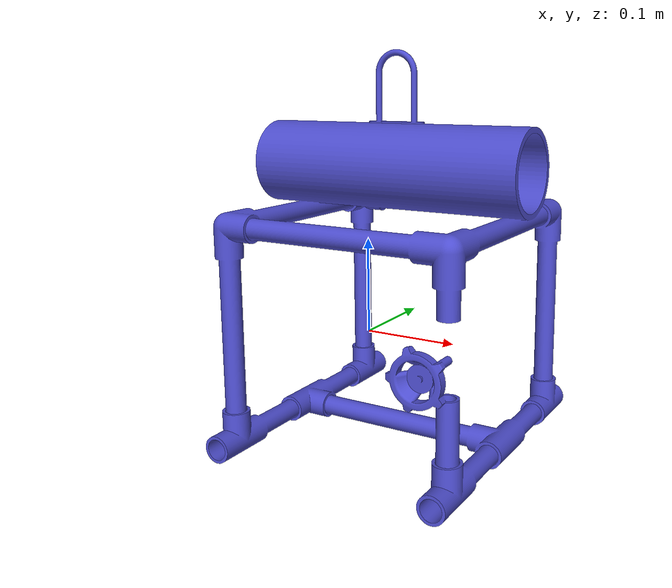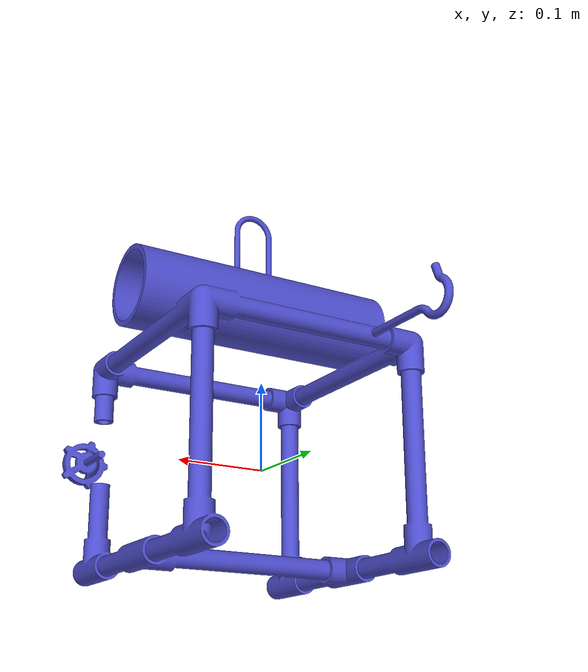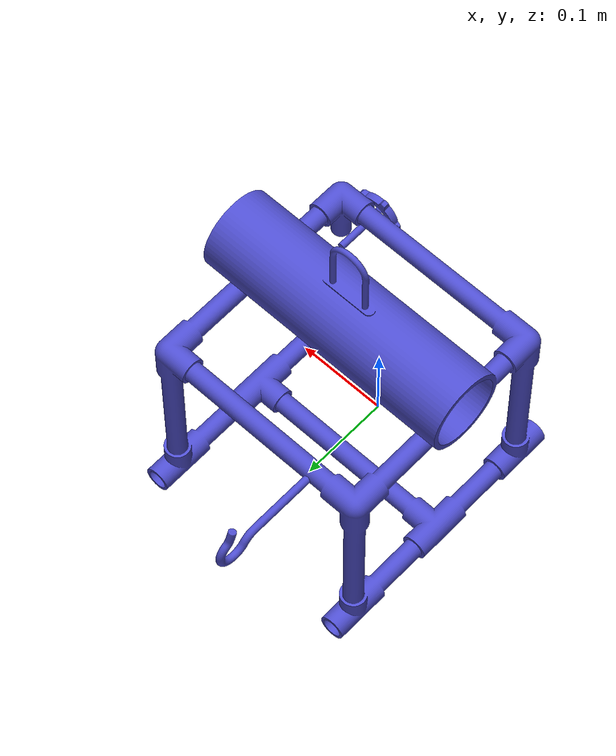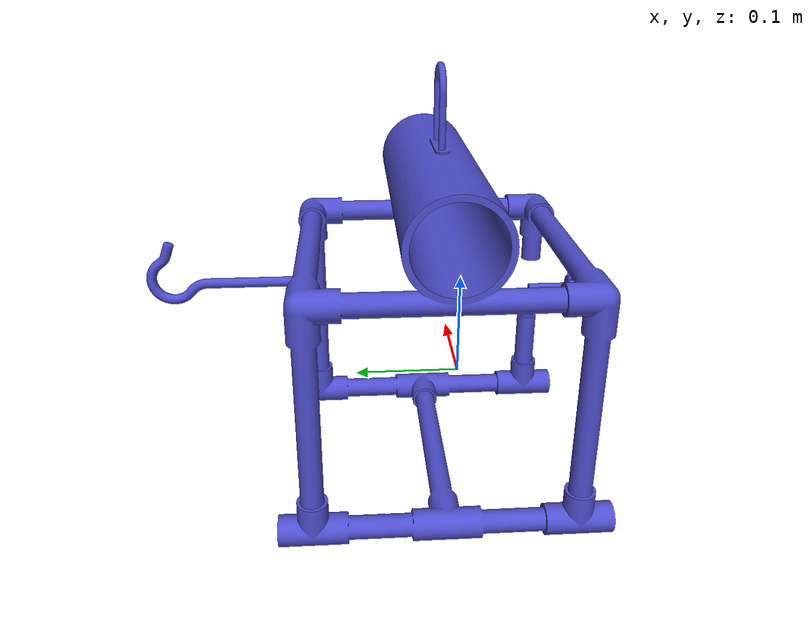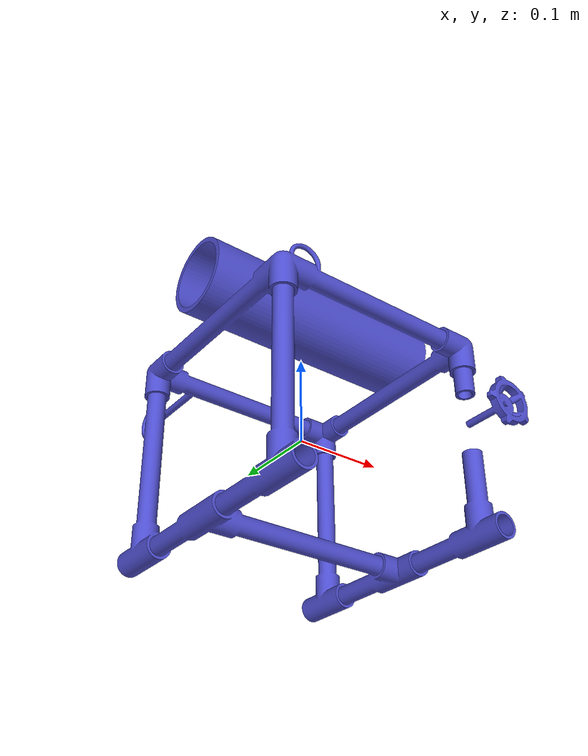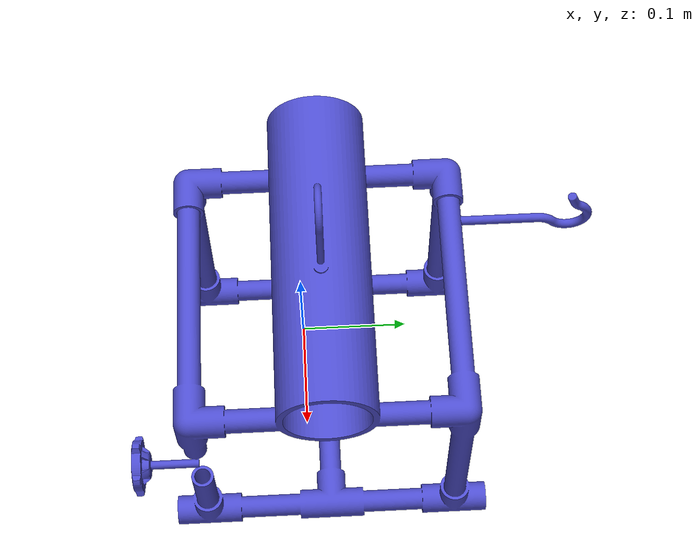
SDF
<?xml version='1.0'?>
<sdf version='1.7'>
  <model name='irrigation_system'>
    <link name='part_1'>
      <inertial>
        <pose>0 0 0 0 -0 0</pose>
        <mass>2</mass>
        <inertia>
          <ixx>0</ixx>
          <ixy>0</ixy>
          <ixz>0</ixz>
          <iyy>0</iyy>
          <iyz>0</iyz>
          <izz>0</izz>
        </inertia>
      </inertial>
      <self_collide>0</self_collide>
      <enable_wind>0</enable_wind>
      <kinematic>0</kinematic>
      <pose>0 0 0 0 -0 0</pose>
      <gravity>1</gravity>
      <is_static>1</is_static>
      <frame name='part_1_frame'>
        <pose>0 0 0 0 -0 0</pose>
      </frame>
      <visual name='assembly_visual'>
        <pose>0.25 0.2 -0.2 0 -0 0</pose>
        <geometry>
          <mesh>
            <uri>/home/eer/Documents/Software_2024/ROS2/models/irrigation_system/irrigation_system_visual.stl</uri>
            <scale>0.001 0.001 0.001</scale>
          </mesh>
        </geometry>
        <material>
          <shader type='pixel'>
            <normal_map>__default__</normal_map>
          </shader>
          <ambient>0.3 0.3 0.3 1</ambient>
          <diffuse>0.3 0.3 0.8 1</diffuse>
          <specular>0.3 0.3 0.3 1</specular>
          <emissive>0 0 0 1</emissive>
          <script>
            <name>Gazebo/Grey</name>
            <uri>__default__</uri>
          </script>
        </material>
        <transparency>0</transparency>
        <cast_shadows>1</cast_shadows>
      </visual>
      <collision name='collision_1'>
        <laser_retro>0</laser_retro>
        <max_contacts>10</max_contacts>
        <pose>0.02 0.02 0.02 0 -0 0</pose>
        <geometry>
          <box>
            <size>0.28 0.279628 0.293039</size>
          </box>
        </geometry>
        <surface>
          <friction>
            <ode>
              <mu>1</mu>
              <mu2>1</mu2>
              <fdir1>0 0 0</fdir1>
              <slip1>0</slip1>
              <slip2>0</slip2>
            </ode>
            <torsional>
              <coefficient>1</coefficient>
              <patch_radius>0</patch_radius>
              <surface_radius>0</surface_radius>
              <use_patch_radius>1</use_patch_radius>
              <ode>
                <slip>0</slip>
              </ode>
            </torsional>
          </friction>
          <bounce>
            <restitution_coefficient>0</restitution_coefficient>
            <threshold>1e+06</threshold>
          </bounce>
          <contact>
            <collide_without_contact>0</collide_without_contact>
            <collide_without_contact_bitmask>1</collide_without_contact_bitmask>
            <collide_bitmask>1</collide_bitmask>
            <ode>
              <soft_cfm>0</soft_cfm>
              <soft_erp>0.2</soft_erp>
              <kp>1e+13</kp>
              <kd>1</kd>
              <max_vel>0.01</max_vel>
              <min_depth>0</min_depth>
            </ode>
            <bullet>
              <split_impulse>1</split_impulse>
              <split_impulse_penetration_threshold>-0.01</split_impulse_penetration_threshold>
              <soft_cfm>0</soft_cfm>
              <soft_erp>0.2</soft_erp>
              <kp>1e+13</kp>
              <kd>1</kd>
            </bullet>
          </contact>
        </surface>
      </collision>
      <collision name='collision_3'>
        <laser_retro>0</laser_retro>
        <max_contacts>10</max_contacts>
        <pose>0.05 0.02 0.22 0 -0 0</pose>
        <geometry>
          <box>
            <size>0.02 0.01 0.13</size>
          </box>
        </geometry>
        <surface>
          <friction>
            <ode>
              <mu>1</mu>
              <mu2>1</mu2>
              <fdir1>0 0 0</fdir1>
              <slip1>0</slip1>
              <slip2>0</slip2>
            </ode>
            <torsional>
              <coefficient>1</coefficient>
              <patch_radius>0</patch_radius>
              <surface_radius>0</surface_radius>
              <use_patch_radius>1</use_patch_radius>
              <ode>
                <slip>0</slip>
              </ode>
            </torsional>
          </friction>
          <bounce>
            <restitution_coefficient>0</restitution_coefficient>
            <threshold>1e+06</threshold>
          </bounce>
          <contact>
            <collide_without_contact>0</collide_without_contact>
            <collide_without_contact_bitmask>1</collide_without_contact_bitmask>
            <collide_bitmask>1</collide_bitmask>
            <ode>
              <soft_cfm>0</soft_cfm>
              <soft_erp>0.2</soft_erp>
              <kp>1e+13</kp>
              <kd>1</kd>
              <max_vel>0.01</max_vel>
              <min_depth>0</min_depth>
            </ode>
            <bullet>
              <split_impulse>1</split_impulse>
              <split_impulse_penetration_threshold>-0.01</split_impulse_penetration_threshold>
              <soft_cfm>0</soft_cfm>
              <soft_erp>0.2</soft_erp>
              <kp>1e+13</kp>
              <kd>1</kd>
            </bullet>
          </contact>
        </surface>
      </collision>
      <collision name='collision_6'>
        <laser_retro>0</laser_retro>
        <max_contacts>10</max_contacts>
        <pose>-0.045 0.27 0.15 3.14159 1.57079 -1.57079</pose>
        <geometry>
          <box>
            <size>0.05 0.01 0.01</size>
          </box>
        </geometry>
        <surface>
          <friction>
            <ode>
              <mu>1</mu>
              <mu2>1</mu2>
              <fdir1>0 0 0</fdir1>
              <slip1>0</slip1>
              <slip2>0</slip2>
            </ode>
            <torsional>
              <coefficient>1</coefficient>
              <patch_radius>0</patch_radius>
              <surface_radius>0</surface_radius>
              <use_patch_radius>1</use_patch_radius>
              <ode>
                <slip>0</slip>
              </ode>
            </torsional>
          </friction>
          <bounce>
            <restitution_coefficient>0</restitution_coefficient>
            <threshold>1e+06</threshold>
          </bounce>
          <contact>
            <collide_without_contact>0</collide_without_contact>
            <collide_without_contact_bitmask>1</collide_without_contact_bitmask>
            <collide_bitmask>1</collide_bitmask>
            <ode>
              <soft_cfm>0</soft_cfm>
              <soft_erp>0.2</soft_erp>
              <kp>1e+13</kp>
              <kd>1</kd>
              <max_vel>0.01</max_vel>
              <min_depth>0</min_depth>
            </ode>
            <bullet>
              <split_impulse>1</split_impulse>
              <split_impulse_penetration_threshold>-0.01</split_impulse_penetration_threshold>
              <soft_cfm>0</soft_cfm>
              <soft_erp>0.2</soft_erp>
              <kp>1e+13</kp>
              <kd>1</kd>
            </bullet>
          </contact>
        </surface>
      </collision>
      <collision name='collision_2'>
        <laser_retro>0</laser_retro>
        <max_contacts>10</max_contacts>
        <pose>0.02 0.02 0.29 0 -0 0</pose>
        <geometry>
          <box>
            <size>0.08 0.01 0.01</size>
          </box>
        </geometry>
        <surface>
          <friction>
            <ode>
              <mu>1</mu>
              <mu2>1</mu2>
              <fdir1>0 0 0</fdir1>
              <slip1>0</slip1>
              <slip2>0</slip2>
            </ode>
            <torsional>
              <coefficient>1</coefficient>
              <patch_radius>0</patch_radius>
              <surface_radius>0</surface_radius>
              <use_patch_radius>1</use_patch_radius>
              <ode>
                <slip>0</slip>
              </ode>
            </torsional>
          </friction>
          <bounce>
            <restitution_coefficient>0</restitution_coefficient>
            <threshold>1e+06</threshold>
          </bounce>
          <contact>
            <collide_without_contact>0</collide_without_contact>
            <collide_without_contact_bitmask>1</collide_without_contact_bitmask>
            <collide_bitmask>1</collide_bitmask>
            <ode>
              <soft_cfm>0</soft_cfm>
              <soft_erp>0.2</soft_erp>
              <kp>1e+13</kp>
              <kd>1</kd>
              <max_vel>0.01</max_vel>
              <min_depth>0</min_depth>
            </ode>
            <bullet>
              <split_impulse>1</split_impulse>
              <split_impulse_penetration_threshold>-0.01</split_impulse_penetration_threshold>
              <soft_cfm>0</soft_cfm>
              <soft_erp>0.2</soft_erp>
              <kp>1e+13</kp>
              <kd>1</kd>
            </bullet>
          </contact>
        </surface>
      </collision>
      <collision name='collision_4'>
        <laser_retro>0</laser_retro>
        <max_contacts>10</max_contacts>
        <pose>-0.01 0.02 0.22 0 -0 0</pose>
        <geometry>
          <box>
            <size>0.02 0.01 0.13</size>
          </box>
        </geometry>
        <surface>
          <friction>
            <ode>
              <mu>1</mu>
              <mu2>1</mu2>
              <fdir1>0 0 0</fdir1>
              <slip1>0</slip1>
              <slip2>0</slip2>
            </ode>
            <torsional>
              <coefficient>1</coefficient>
              <patch_radius>0</patch_radius>
              <surface_radius>0</surface_radius>
              <use_patch_radius>1</use_patch_radius>
              <ode>
                <slip>0</slip>
              </ode>
            </torsional>
          </friction>
          <bounce>
            <restitution_coefficient>0</restitution_coefficient>
            <threshold>1e+06</threshold>
          </bounce>
          <contact>
            <collide_without_contact>0</collide_without_contact>
            <collide_without_contact_bitmask>1</collide_without_contact_bitmask>
            <collide_bitmask>1</collide_bitmask>
            <ode>
              <soft_cfm>0</soft_cfm>
              <soft_erp>0.2</soft_erp>
              <kp>1e+13</kp>
              <kd>1</kd>
              <max_vel>0.01</max_vel>
              <min_depth>0</min_depth>
            </ode>
            <bullet>
              <split_impulse>1</split_impulse>
              <split_impulse_penetration_threshold>-0.01</split_impulse_penetration_threshold>
              <soft_cfm>0</soft_cfm>
              <soft_erp>0.2</soft_erp>
              <kp>1e+13</kp>
              <kd>1</kd>
            </bullet>
          </contact>
        </surface>
      </collision>
      <collision name='collision_5'>
        <laser_retro>0</laser_retro>
        <max_contacts>10</max_contacts>
        <pose>-0.045 0.22 0.12 0 -0 1.5708</pose>
        <geometry>
          <box>
            <size>0.11 0.01 0.01</size>
          </box>
        </geometry>
        <surface>
          <friction>
            <ode>
              <mu>1</mu>
              <mu2>1</mu2>
              <fdir1>0 0 0</fdir1>
              <slip1>0</slip1>
              <slip2>0</slip2>
            </ode>
            <torsional>
              <coefficient>1</coefficient>
              <patch_radius>0</patch_radius>
              <surface_radius>0</surface_radius>
              <use_patch_radius>1</use_patch_radius>
              <ode>
                <slip>0</slip>
              </ode>
            </torsional>
          </friction>
          <bounce>
            <restitution_coefficient>0</restitution_coefficient>
            <threshold>1e+06</threshold>
          </bounce>
          <contact>
            <collide_without_contact>0</collide_without_contact>
            <collide_without_contact_bitmask>1</collide_without_contact_bitmask>
            <collide_bitmask>1</collide_bitmask>
            <ode>
              <soft_cfm>0</soft_cfm>
              <soft_erp>0.2</soft_erp>
              <kp>1e+13</kp>
              <kd>1</kd>
              <max_vel>0.01</max_vel>
              <min_depth>0</min_depth>
            </ode>
            <bullet>
              <split_impulse>1</split_impulse>
              <split_impulse_penetration_threshold>-0.01</split_impulse_penetration_threshold>
              <soft_cfm>0</soft_cfm>
              <soft_erp>0.2</soft_erp>
              <kp>1e+13</kp>
              <kd>1</kd>
            </bullet>
          </contact>
        </surface>
      </collision>
    </link>
    <static>0</static>
    <allow_auto_disable>1</allow_auto_disable>
  </model>
</sdf>
